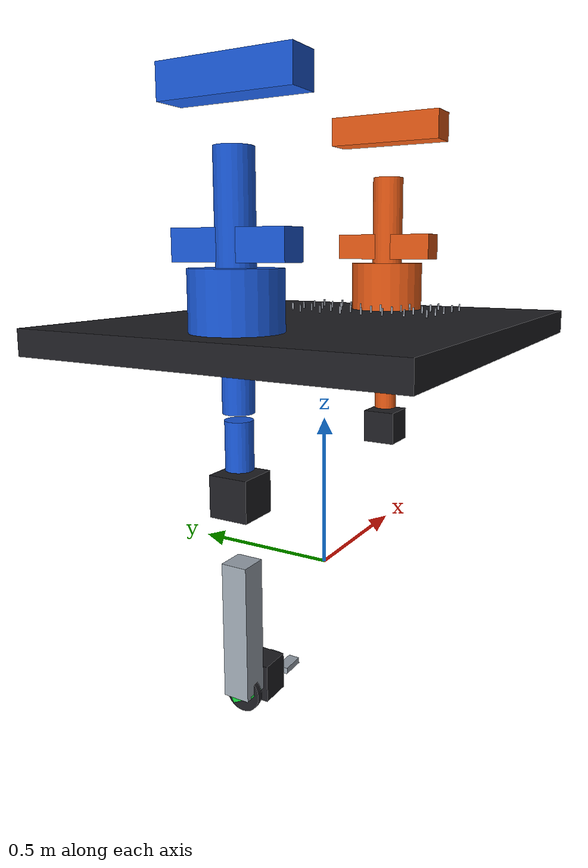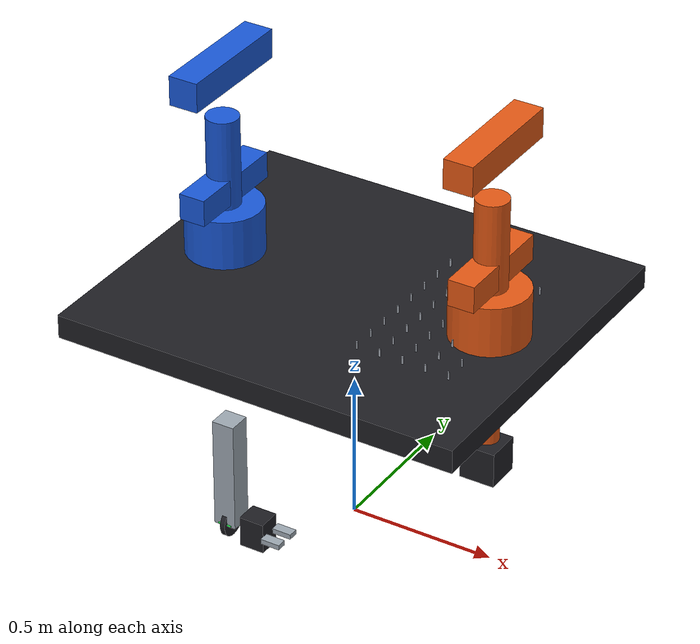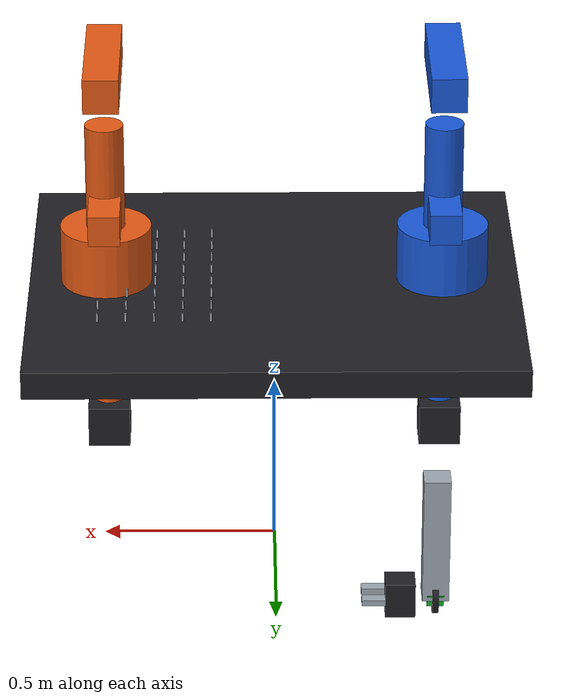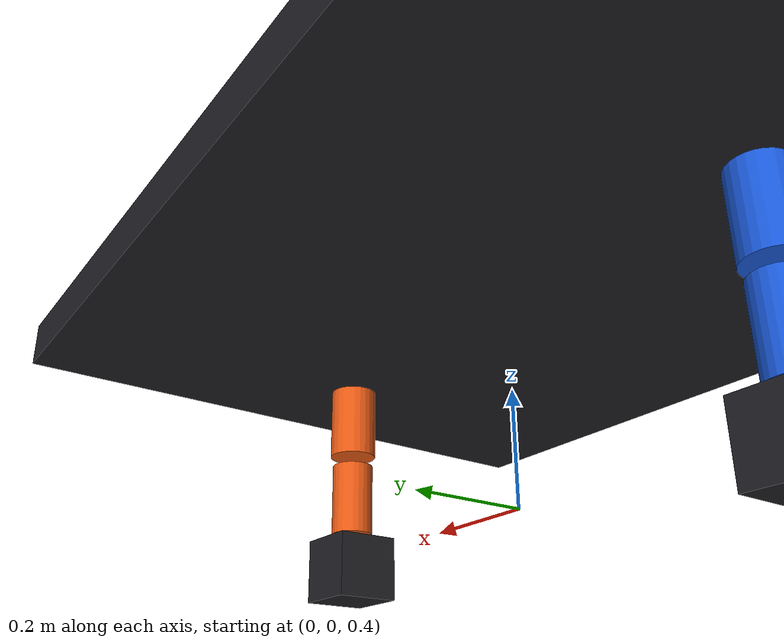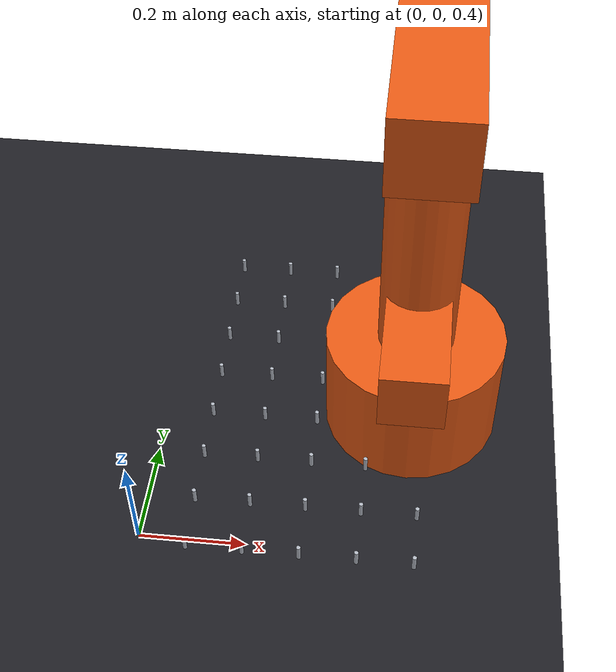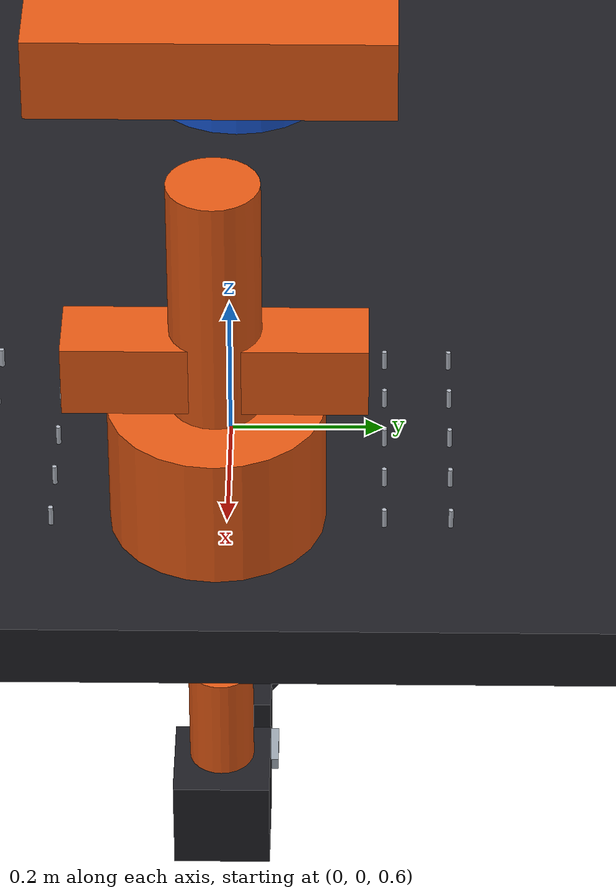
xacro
<?xml version="1.0"?>
<robot xmlns:xacro="http://www.ros.org/wiki/xacro" name="fairino_dualarm_sim">
  <material name="blue"><color rgba="0.10 0.35 0.85 1"/></material>
  <material name="orange"><color rgba="0.90 0.35 0.08 1"/></material>
  <material name="dark"><color rgba="0.12 0.12 0.14 1"/></material>
  <material name="green"><color rgba="0.10 0.85 0.25 1"/></material>
  <material name="aluminum"><color rgba="0.62 0.66 0.70 1"/></material>
  <material name="bolt"><color rgba="0.70 0.72 0.76 1"/></material>

  <link name="world"/>
  <link name="table"><visual><geometry><box size="1.4 1.2 0.08"/></geometry><material name="dark"/></visual><collision><geometry><box size="1.4 1.2 0.08"/></geometry></collision></link>
  <joint name="world_table" type="fixed"><parent link="world"/><child link="table"/><origin xyz="0 0 0.79"/></joint>

  <xacro:macro name="arm" params="prefix x mat">
    <link name="${prefix}base_link"><visual><geometry><cylinder radius="0.13" length="0.18"/></geometry><material name="${mat}"/></visual><collision><geometry><cylinder radius="0.13" length="0.18"/></geometry></collision></link>
    <joint name="${prefix}base_joint" type="fixed"><parent link="world"/><child link="${prefix}base_link"/><origin xyz="${x} 0 0.91"/></joint>
    <link name="${prefix}link1"><visual><geometry><cylinder radius="0.055" length="0.34"/></geometry><material name="${mat}"/></visual><collision><geometry><cylinder radius="0.055" length="0.34"/></geometry></collision></link>
    <joint name="${prefix}joint1" type="revolute"><parent link="${prefix}base_link"/><child link="${prefix}link1"/><origin xyz="0 0 0.23" rpy="0 0 0"/><axis xyz="0 0 1"/><limit lower="-3.14" upper="3.14" effort="50" velocity="2"/></joint>
    <link name="${prefix}link2"><visual><geometry><box size="0.10 0.42 0.10"/></geometry><material name="${mat}"/></visual><collision><geometry><box size="0.10 0.42 0.10"/></geometry></collision></link>
    <joint name="${prefix}joint2" type="revolute"><parent link="${prefix}link1"/><child link="${prefix}link2"/><origin xyz="0 0 0.34"/><axis xyz="0 1 0"/><limit lower="-2.5" upper="2.5" effort="50" velocity="2"/></joint>
    <link name="${prefix}link3"><visual><geometry><box size="0.09 0.36 0.09"/></geometry><material name="${mat}"/></visual><collision><geometry><box size="0.09 0.36 0.09"/></geometry></collision></link>
    <joint name="${prefix}joint3" type="revolute"><parent link="${prefix}link2"/><child link="${prefix}link3"/><origin xyz="0 0 -0.42"/><axis xyz="0 1 0"/><limit lower="-2.5" upper="2.5" effort="50" velocity="2"/></joint>
    <link name="${prefix}link4"><visual><geometry><cylinder radius="0.045" length="0.18"/></geometry><material name="${mat}"/></visual><collision><geometry><cylinder radius="0.045" length="0.18"/></geometry></collision></link>
    <joint name="${prefix}joint4" type="revolute"><parent link="${prefix}link3"/><child link="${prefix}link4"/><origin xyz="0 0 -0.36"/><axis xyz="1 0 0"/><limit lower="-3.14" upper="3.14" effort="30" velocity="2"/></joint>
    <link name="${prefix}link5"><visual><geometry><cylinder radius="0.04" length="0.14"/></geometry><material name="${mat}"/></visual><collision><geometry><cylinder radius="0.04" length="0.14"/></geometry></collision></link>
    <joint name="${prefix}joint5" type="revolute"><parent link="${prefix}link4"/><child link="${prefix}link5"/><origin xyz="0 0 -0.18"/><axis xyz="0 1 0"/><limit lower="-2.5" upper="2.5" effort="30" velocity="2"/></joint>
    <link name="${prefix}tool"><visual><geometry><box size="0.12 0.12 0.12"/></geometry><material name="dark"/></visual><collision><geometry><box size="0.12 0.12 0.12"/></geometry></collision></link>
    <joint name="${prefix}joint6" type="revolute"><parent link="${prefix}link5"/><child link="${prefix}tool"/><origin xyz="0 0 -0.14"/><axis xyz="1 0 0"/><limit lower="-3.14" upper="3.14" effort="20" velocity="2"/></joint>
  </xacro:macro>
  <xacro:arm prefix="left_" x="-0.48" mat="blue"/>
  <xacro:arm prefix="right_" x="0.48" mat="orange"/>

  <!-- Side-mounted end-effector mock-up: aluminum extrusion, rotated flange,
       parallel jaws, and a head-mounted depth camera. -->
  <link name="left_aluminum_bar">
    <visual><origin xyz="0 0 -0.20"/><geometry><box size="0.08 0.08 0.40"/></geometry><material name="aluminum"/></visual>
    <collision><origin xyz="0 0 -0.20"/><geometry><box size="0.08 0.08 0.40"/></geometry></collision>
  </link>
  <joint name="left_aluminum_bar_joint" type="fixed"><parent link="left_tool"/><child link="left_aluminum_bar"/><origin xyz="0 0 -0.20"/></joint>
  <link name="left_side_flange">
    <visual><geometry><cylinder radius="0.055" length="0.018"/></geometry><material name="dark"/></visual>
    <collision><geometry><cylinder radius="0.055" length="0.018"/></geometry></collision>
  </link>
  <joint name="left_side_flange_joint" type="fixed"><parent link="left_aluminum_bar"/><child link="left_side_flange"/><origin xyz="0 0 -0.40" rpy="0 1.5708 0"/></joint>
  <link name="left_gripper_base">
    <visual><origin xyz="0 0 0.045"/><geometry><box size="0.11 0.08 0.09"/></geometry><material name="dark"/></visual>
    <collision><origin xyz="0 0 0.045"/><geometry><box size="0.11 0.08 0.09"/></geometry></collision>
  </link>
  <joint name="left_gripper_mount" type="fixed"><parent link="left_side_flange"/><child link="left_gripper_base"/><origin xyz="0 0 0.06" rpy="0 0 0"/></joint>
  <link name="left_finger_a"><visual><origin xyz="0 0 0.035"/><geometry><box size="0.018 0.035 0.07"/></geometry><material name="aluminum"/></visual><collision><origin xyz="0 0 0.035"/><geometry><box size="0.018 0.035 0.07"/></geometry></collision></link>
  <joint name="left_finger_a_joint" type="prismatic"><parent link="left_gripper_base"/><child link="left_finger_a"/><origin xyz="0 0.035 0.09"/><axis xyz="0 1 0"/><limit lower="0" upper="0.025" effort="30" velocity="0.05"/></joint>
  <link name="left_finger_b"><visual><origin xyz="0 0 0.035"/><geometry><box size="0.018 0.035 0.07"/></geometry><material name="aluminum"/></visual><collision><origin xyz="0 0 0.035"/><geometry><box size="0.018 0.035 0.07"/></geometry></collision></link>
  <joint name="left_finger_b_joint" type="prismatic"><parent link="left_gripper_base"/><child link="left_finger_b"/><origin xyz="0 -0.035 0.09"/><axis xyz="0 1 0"/><limit lower="-0.025" upper="0" effort="30" velocity="0.05"/></joint>

  <link name="head_camera_link">
    <visual><geometry><box size="0.07 0.05 0.05"/></geometry><material name="green"/></visual>
    <collision><geometry><box size="0.07 0.05 0.05"/></geometry></collision>
  </link>
  <joint name="head_camera_mount" type="fixed"><parent link="left_aluminum_bar"/><child link="head_camera_link"/><origin xyz="0 0 -0.39" rpy="0 -0.45 -1.5708"/></joint>
  <link name="head_camera_optical_frame"/>
  <joint name="head_camera_optical_joint" type="fixed"><parent link="head_camera_link"/><child link="head_camera_optical_frame"/><origin xyz="0 0 0" rpy="-1.5708 0 -1.5708"/></joint>
  <gazebo reference="head_camera_link">
    <sensor name="head_depth_sensor" type="depth">
      <always_on>true</always_on><update_rate>15</update_rate><visualize>true</visualize>
      <camera><horizontal_fov>1.047</horizontal_fov><image><width>640</width><height>480</height><format>R8G8B8</format></image><clip><near>0.08</near><far>3.0</far></clip></camera>
      <plugin name="head_depth_camera_plugin" filename="libgazebo_ros_depth_camera.so">
        <cameraName>head_depth</cameraName><frameName>head_camera_optical_frame</frameName>
        <imageTopicName>image_raw</imageTopicName><depthImageTopicName>depth/image_raw</depthImageTopicName>
        <pointCloudTopicName>points</pointCloudTopicName><cameraInfoTopicName>camera_info</cameraInfoTopicName>
      </plugin>
    </sensor>
  </gazebo>

  <!-- 5 x 8 orderly bolts, each 25 mm long and 6 mm diameter. -->
  <xacro:macro name="bolt" params="name x y">
    <link name="${name}"><visual><origin xyz="0 0 0.0125"/><geometry><cylinder radius="0.003" length="0.025"/></geometry><material name="bolt"/></visual><collision><origin xyz="0 0 0.0125"/><geometry><cylinder radius="0.003" length="0.025"/></geometry></collision></link>
    <joint name="${name}_joint" type="fixed"><parent link="world"/><child link="${name}"/><origin xyz="${x} ${y} 0.83"/></joint>
  </xacro:macro>
  <xacro:bolt name="bolt_01" x="0.18" y="-0.28"/><xacro:bolt name="bolt_02" x="0.18" y="-0.20"/><xacro:bolt name="bolt_03" x="0.18" y="-0.12"/><xacro:bolt name="bolt_04" x="0.18" y="-0.04"/><xacro:bolt name="bolt_05" x="0.18" y="0.04"/><xacro:bolt name="bolt_06" x="0.18" y="0.12"/><xacro:bolt name="bolt_07" x="0.18" y="0.20"/><xacro:bolt name="bolt_08" x="0.18" y="0.28"/>
  <xacro:bolt name="bolt_09" x="0.26" y="-0.28"/><xacro:bolt name="bolt_10" x="0.26" y="-0.20"/><xacro:bolt name="bolt_11" x="0.26" y="-0.12"/><xacro:bolt name="bolt_12" x="0.26" y="-0.04"/><xacro:bolt name="bolt_13" x="0.26" y="0.04"/><xacro:bolt name="bolt_14" x="0.26" y="0.12"/><xacro:bolt name="bolt_15" x="0.26" y="0.20"/><xacro:bolt name="bolt_16" x="0.26" y="0.28"/>
  <xacro:bolt name="bolt_17" x="0.34" y="-0.28"/><xacro:bolt name="bolt_18" x="0.34" y="-0.20"/><xacro:bolt name="bolt_19" x="0.34" y="-0.12"/><xacro:bolt name="bolt_20" x="0.34" y="-0.04"/><xacro:bolt name="bolt_21" x="0.34" y="0.04"/><xacro:bolt name="bolt_22" x="0.34" y="0.12"/><xacro:bolt name="bolt_23" x="0.34" y="0.20"/><xacro:bolt name="bolt_24" x="0.34" y="0.28"/>
  <xacro:bolt name="bolt_25" x="0.42" y="-0.28"/><xacro:bolt name="bolt_26" x="0.42" y="-0.20"/><xacro:bolt name="bolt_27" x="0.42" y="-0.12"/><xacro:bolt name="bolt_28" x="0.42" y="-0.04"/><xacro:bolt name="bolt_29" x="0.42" y="0.04"/><xacro:bolt name="bolt_30" x="0.42" y="0.12"/><xacro:bolt name="bolt_31" x="0.42" y="0.20"/><xacro:bolt name="bolt_32" x="0.42" y="0.28"/>
  <xacro:bolt name="bolt_33" x="0.50" y="-0.28"/><xacro:bolt name="bolt_34" x="0.50" y="-0.20"/><xacro:bolt name="bolt_35" x="0.50" y="-0.12"/><xacro:bolt name="bolt_36" x="0.50" y="-0.04"/><xacro:bolt name="bolt_37" x="0.50" y="0.04"/><xacro:bolt name="bolt_38" x="0.50" y="0.12"/><xacro:bolt name="bolt_39" x="0.50" y="0.20"/><xacro:bolt name="bolt_40" x="0.50" y="0.28"/>

  <link name="object"><visual><geometry><cylinder radius="0.045" length="0.16"/></geometry><material name="green"/></visual><collision><geometry><cylinder radius="0.045" length="0.16"/></geometry></collision></link>
  <joint name="object_fixed" type="fixed"><parent link="world"/><child link="object"/><origin xyz="0.42 0 0.91"/></joint>
</robot>
